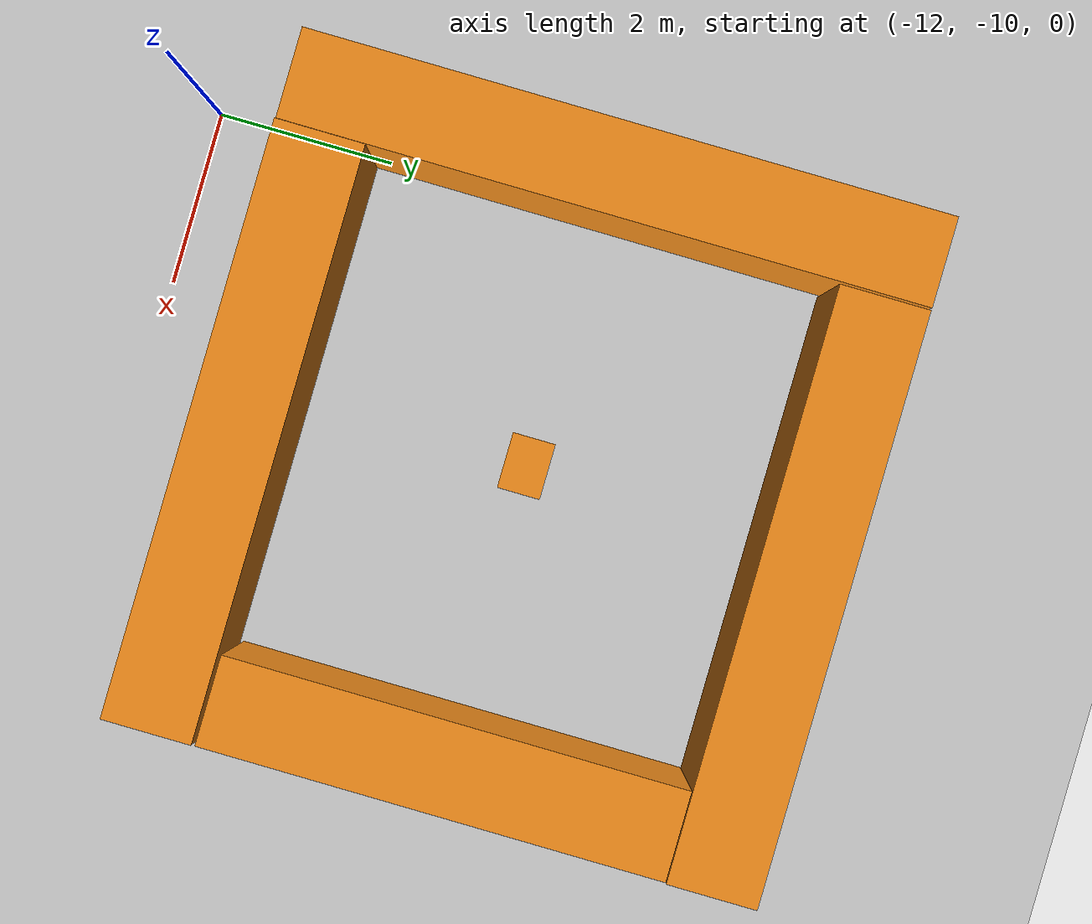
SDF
<sdf version="1.7">
 <world name="default">
  <light name="sun" type="directional">
   <pose>0 0 10 0 -0 0</pose>
   <diffuse>0.8 0.8 0.8 1</diffuse>
   <specular>0.2 0.2 0.2 1</specular>
   <attenuation>
    <range>1000</range>
    <constant>0.9</constant>
    <linear>0.01</linear>
    <quadratic>0.001</quadratic>
   </attenuation>
   <direction>-0.5 0.1 -0.9</direction>
   <spot><inner_angle>0</inner_angle><outer_angle>0</outer_angle><falloff>0</falloff></spot>
  </light>
  <model name="ground_plane">
   <static>1</static>
   <link name="link">
    <collision name="collision">
     <geometry><plane><normal>0 0 1</normal><size>100 100</size></plane></geometry>
     <surface>
      <contact><collide_bitmask>65535</collide_bitmask></contact>
      <friction><ode><mu>100</mu><mu2>50</mu2></ode></friction>
     </surface>
    </collision>
    <visual name="visual">
     <cast_shadows>0</cast_shadows>
     <geometry><plane><normal>0 0 1</normal><size>100 100</size></plane></geometry>
     <material>
      <script><uri>file://media/materials/scripts/gazebo.material</uri><name>Gazebo/Grey</name></script>
     </material>
    </visual>
   </link>
  </model>
  <gravity>0 0 -9.8</gravity>
  <magnetic_field>6e-06 2.3e-05 -4.2e-05</magnetic_field>
  <atmosphere type="adiabatic"/>
  <physics type="ode">
   <max_step_size>0.001</max_step_size>
   <real_time_factor>1</real_time_factor>
   <real_time_update_rate>1000</real_time_update_rate>
  </physics>
  <scene><ambient>0.4 0.4 0.4 1</ambient><background>0.7 0.7 0.7 1</background><shadows>1</shadows></scene>
  <spherical_coordinates>
   <surface_model>EARTH_WGS84</surface_model>
   <latitude_deg>0</latitude_deg>
   <longitude_deg>0</longitude_deg>
   <elevation>0</elevation>
   <heading_deg>0</heading_deg>
  </spherical_coordinates>
  <model name="unit_box_clone_clone_clone">
   <static>1</static>
   <pose>-8.59089 -2.41527 0.493516 -0.002132 1e-06 -1.5705</pose>
   <link name="link">
    <inertial>
     <mass>1</mass>
     <inertia>
      <ixx>0.166667</ixx>
      <ixy>0</ixy>
      <ixz>0</ixz>
      <iyy>0.166667</iyy>
      <iyz>0</iyz>
      <izz>0.166667</izz>
     </inertia>
    </inertial>
    <collision name="collision"><geometry><box><size>1 6.58214 1</size></box></geometry></collision>
    <visual name="visual">
     <geometry><box><size>1 6.58214 1</size></box></geometry>
     <material>
      <script><name>Gazebo/Orange</name><uri>file://media/materials/scripts/gazebo.material</uri></script>
     </material>
    </visual>
   </link>
  </model>
  <model name="unit_box_clone_clone_clone_clone">
   <static>1</static>
   <pose>-8.60995 -8.62812 0.491848 0.002218 -1e-06 -1.57046</pose>
   <link name="link">
    <inertial>
     <mass>1</mass>
     <inertia>
      <ixx>0.166667</ixx>
      <ixy>0</ixy>
      <ixz>0</ixz>
      <iyy>0.166667</iyy>
      <iyz>0</iyz>
      <izz>0.166667</izz>
     </inertia>
    </inertial>
    <collision name="collision"><geometry><box><size>1 6.59435 1</size></box></geometry></collision>
    <visual name="visual">
     <geometry><box><size>1 6.59435 1</size></box></geometry>
     <material>
      <script><name>Gazebo/Orange</name><uri>file://media/materials/scripts/gazebo.material</uri></script>
     </material>
    </visual>
   </link>
  </model>
  <model name="unit_box_clone_clone_clone_clone_0">
   <static>1</static>
   <pose>-5.81793 -5.50793 0.500492 -0.000951 -0 -3.14158</pose>
   <link name="link">
    <inertial>
     <mass>1</mass>
     <inertia>
      <ixx>0.166667</ixx>
      <ixy>0</ixy>
      <ixz>0</ixz>
      <iyy>0.166667</iyy>
      <iyz>0</iyz>
      <izz>0.166667</izz>
     </inertia>
    </inertial>
    <collision name="collision"><geometry><box><size>1 5.16147 1</size></box></geometry></collision>
    <visual name="visual">
     <geometry><box><size>1 5.16147 1</size></box></geometry>
     <material>
      <script><name>Gazebo/Orange</name><uri>file://media/materials/scripts/gazebo.material</uri></script>
     </material>
    </visual>
   </link>
  </model>
  <model name="unit_box_clone_clone_clone_clone_1">
   <static>1</static>
   <pose>-9.12164 -5.55567 0.5 0 0 -1.57228</pose>
   <link name="link">
    <inertial>
     <mass>1</mass>
     <inertia>
      <ixx>0.166667</ixx>
      <ixy>0</ixy>
      <ixz>0</ixz>
      <iyy>0.166667</iyy>
      <iyz>0</iyz>
      <izz>0.166667</izz>
     </inertia>
    </inertial>
    <collision name="collision"><geometry><box><size>0.46344 0.603318 1</size></box></geometry></collision>
    <visual name="visual">
     <geometry><box><size>0.46344 0.603318 1</size></box></geometry>
     <material>
      <script><name>Gazebo/Orange</name><uri>file://media/materials/scripts/gazebo.material</uri></script>
     </material>
    </visual>
   </link>
  </model>
  <model name="unit_box_clone_clone_clone_clone_0_clone">
   <static>1</static>
   <pose>-12.4081 -5.51314 0.498561 -0.002975 -2e-06 3.14088</pose>
   <link name="link">
    <inertial>
     <mass>1</mass>
     <inertia>
      <ixx>0.166667</ixx>
      <ixy>0</ixy>
      <ixz>0</ixz>
      <iyy>0.166667</iyy>
      <iyz>0</iyz>
      <izz>0.166667</izz>
     </inertia>
    </inertial>
    <collision name="collision"><geometry><box><size>1 7.19737 1</size></box></geometry></collision>
    <visual name="visual">
     <geometry><box><size>1 7.19737 1</size></box></geometry>
     <material>
      <script><name>Gazebo/Orange</name><uri>file://media/materials/scripts/gazebo.material</uri></script>
     </material>
    </visual>
   </link>
  </model>
 </world>
</sdf>
